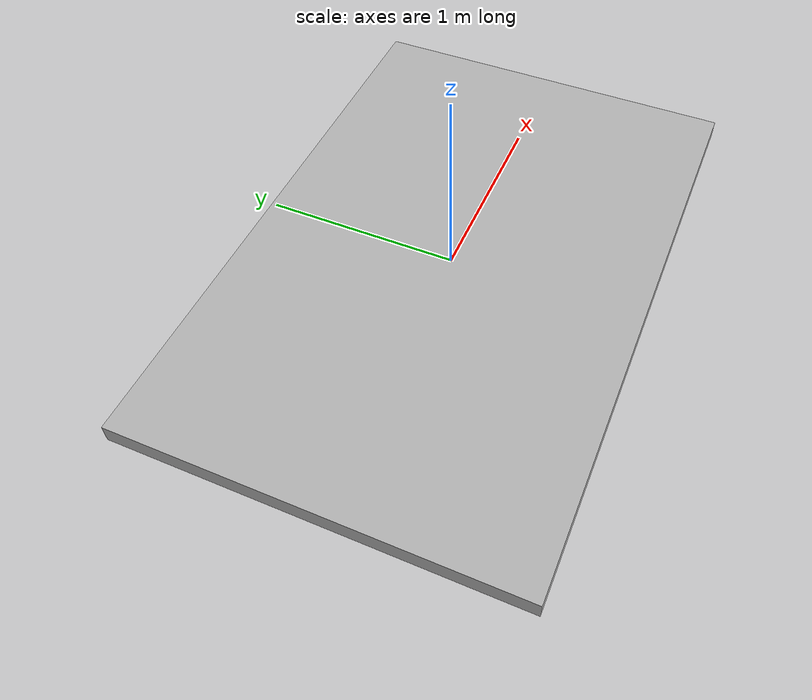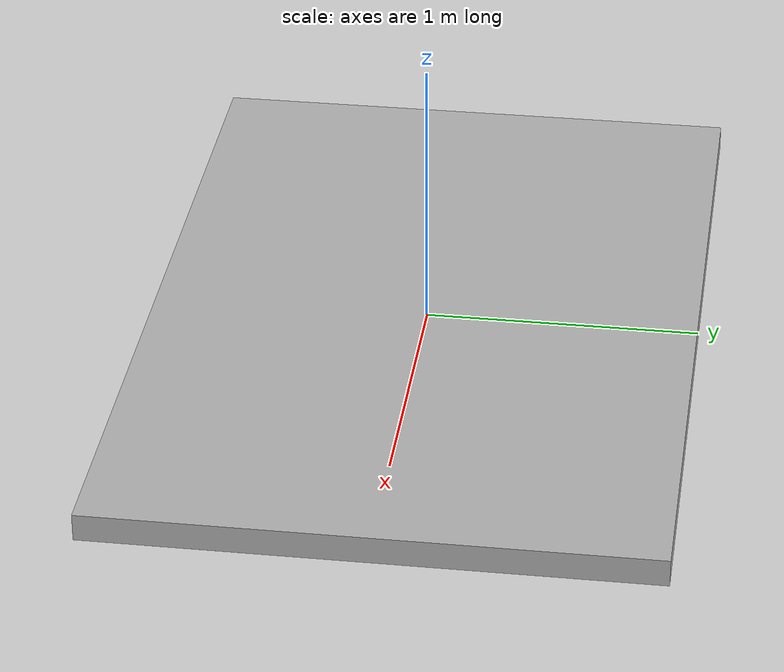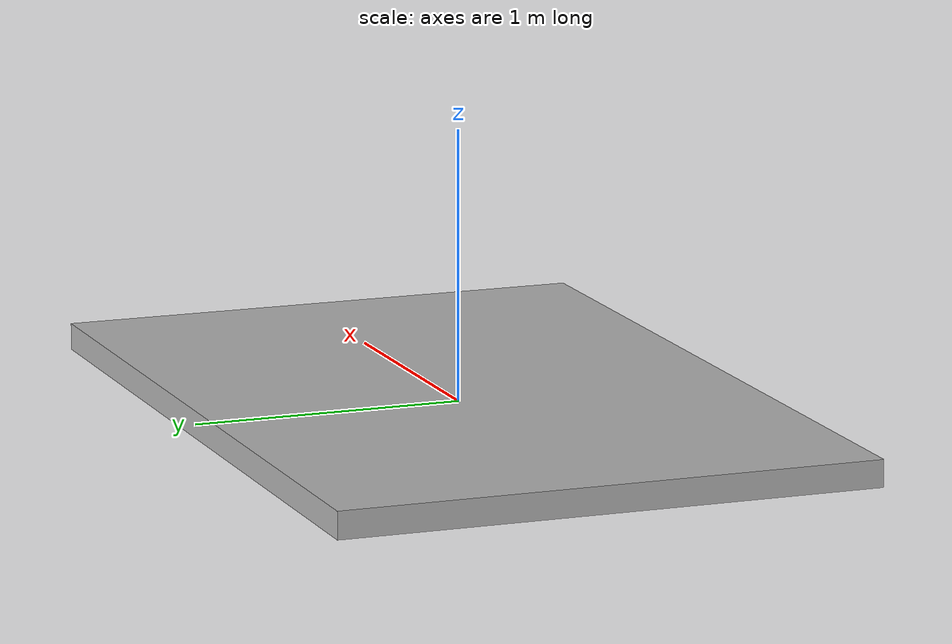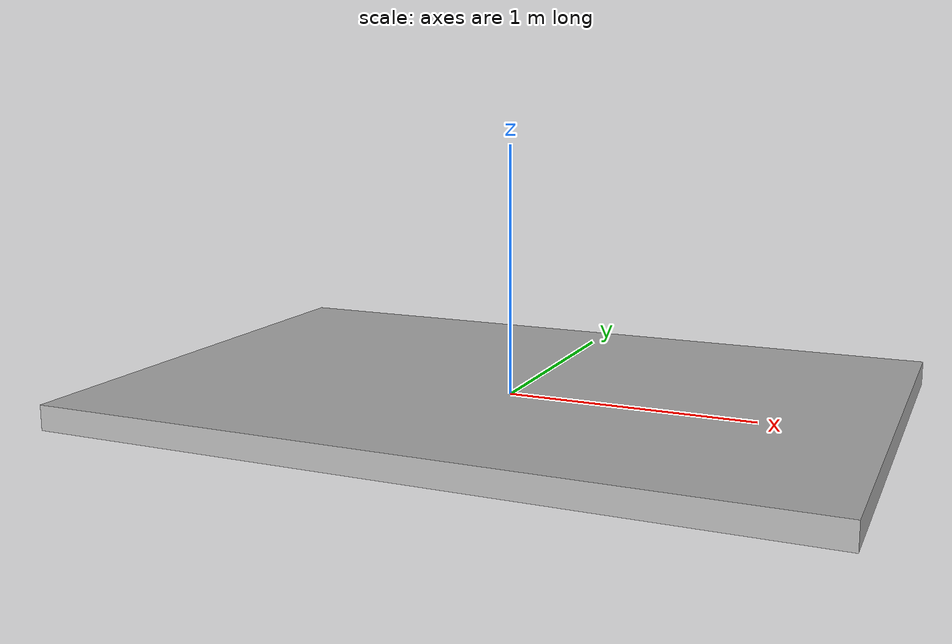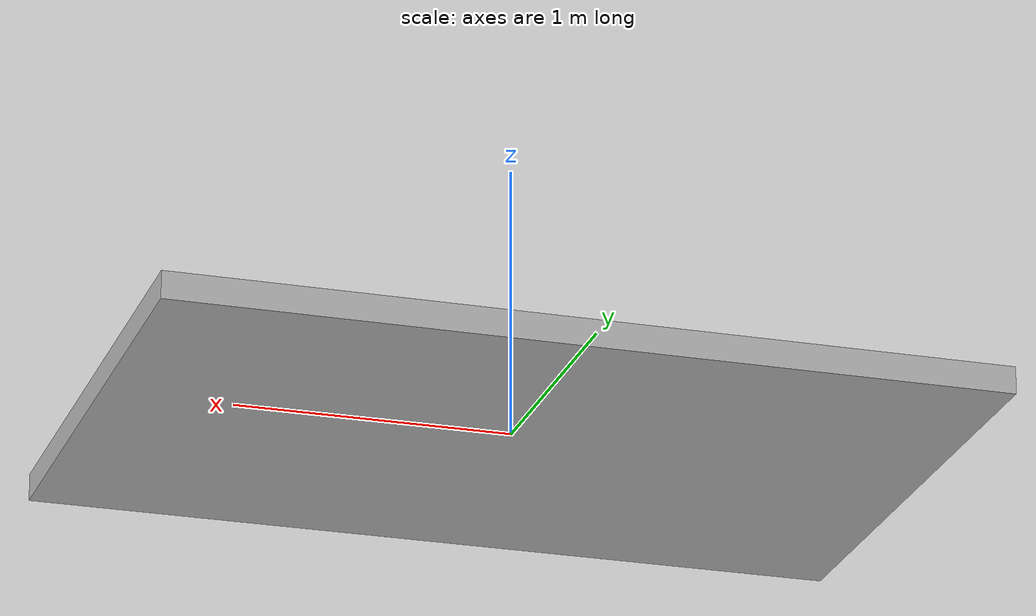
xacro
<?xml version="1.0"?>
<robot name="workcell_system" xmlns:xacro="http://ros.org">

  <!-- Το κεντρικό frame του κόσμου -->
  <link name="world" />

  <!-- Παράδειγμα: Προσθήκη ενός στατικού στοιχείου (π.χ. ένα τραπέζι / βάση) -->
  <link name="workcell_base_structure">
    <visual>
      <origin xyz="0 0 0" rpy="0 0 0" />
      <geometry>
        <box size="3.0 2.0 0.1" /> <!-- Οι διαστάσεις του χώρου σας -->
      </geometry>
      <material name="light_grey">
        <color rgba="0.7 0.7 0.7 1.0" />
      </material>
    </visual>
    <collision>
      <geometry>
        <box size="3.0 2.0 0.1" />
      </geometry>
    </collision>
  </link>

  <joint name="world_to_workcell_joint" type="fixed">
    <parent link="world" />
    <child link="workcell_base_structure" />
    <origin xyz="0 0 0" rpy="0 0 0" />
  </joint>

</robot>
